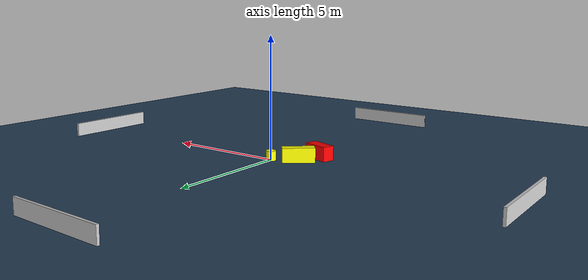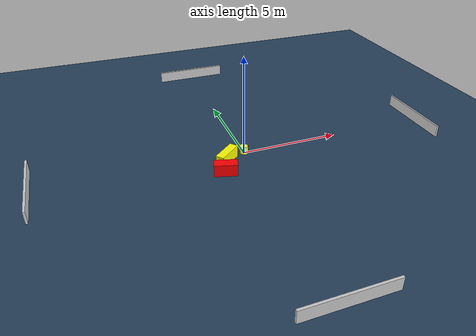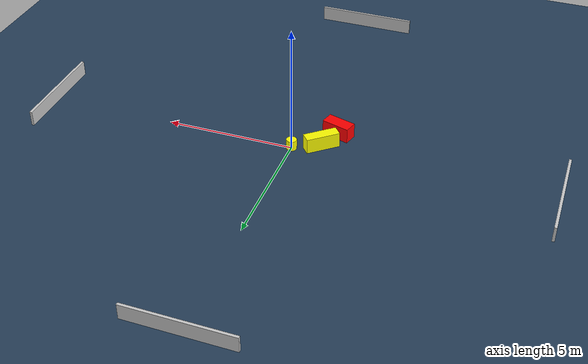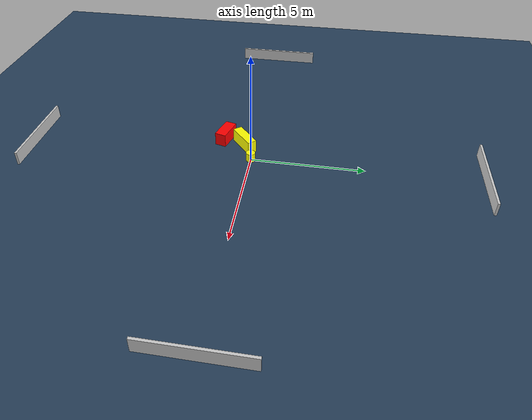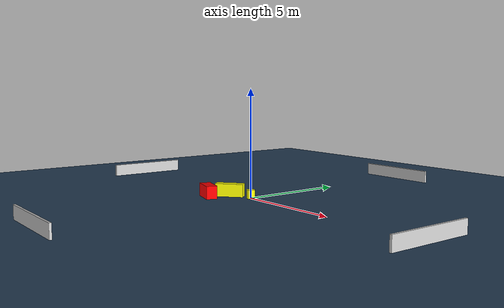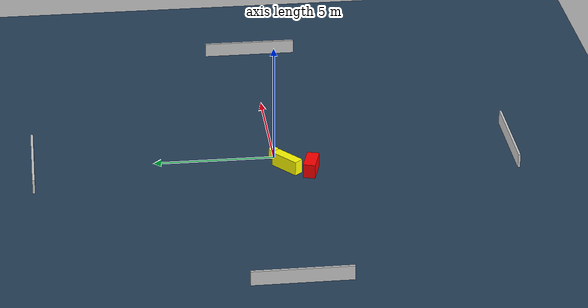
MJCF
<?xml version="1.0" ?>
<mujoco model="generated_environment">
  <option timestep="0.01" integrator="RK4" cone="elliptic"/>
  <default>
    <geom density="1"/>
  </default>
  <asset>
    <texture builtin="gradient" height="3072" name="skybox" rgb1="0.3 0.5 0.7" rgb2="0 0 0" type="skybox" width="512"/>
    <texture builtin="checker" height="300" name="groundplane" rgb1="0.2 0.3 0.4" rgb2="0.1 0.2 0.3" type="2d" width="300"/>
    <material name="groundplane" reflectance="0.2" texrepeat="5 5" texture="groundplane"/>
  </asset>
  <worldbody>
    <light dir="0 0 -1" directional="true" pos="0 0 1.5"/>
    <geom condim="3" friction="0.5 0.005 0.001" material="groundplane" name="floor" pos="0 0 0" size="0 0 0.05" type="plane"/>
    <body name="walls">
      <geom name="wall_1" condim="4" pos="-10.0 0.0 0.3" rgba="0.800000011920929 0.800000011920929 0.800000011920929 1.0" size="0.05 2.0 0.3" type="box"/>
      <geom name="wall_2" condim="4" pos="10.0 0.0 0.3" rgba="0.800000011920929 0.800000011920929 0.800000011920929 1.0" size="0.05 2.0 0.3" type="box"/>
      <geom name="wall_3" condim="4" pos="0.0 -10.0 0.3" rgba="0.800000011920929 0.800000011920929 0.800000011920929 1.0" size="2.0 0.05 0.3" type="box"/>
      <geom name="wall_4" condim="4" pos="0.0 10.0 0.3" rgba="0.800000011920929 0.800000011920929 0.800000011920929 1.0" size="2.0 0.05 0.3" type="box"/>
    </body>
    <body name="robot">
      <joint name="joint_x" type="slide" pos="0 0 0" axis="1 0 0"/>
      <joint name="joint_y" type="slide" pos="0 0 0" axis="0 1 0"/>
      <geom name="robot" type="cylinder" pos="0.0 0.0 0.2" size="0.2 0.2 0.0" mass="5.0" friction="1.0 0.005 0.0001" condim="4" rgba="1.0 1.0 0.0 1.0"/>
    </body>
    <body name="obstacle_1_movable">
      <geom name="obstacle_1_movable" condim="4" pos="-1.027418697922336 -0.44751745281085087 0.3" euler="0 0 40.204525387722526" friction="0.0 0.005 0.001" rgba="1.0 1.0 0.0 1.0" size="0.6598807379986363 0.20998243306032613 0.3" type="box" mass="0.1"/>
      <joint type="free"/>
    </body>
    <body name="obstacle_2_static">
      <geom name="obstacle_2_static" condim="4" pos="-1.4036486367094183 -1.3999454403272737 0.3" euler="0 0 253.98304528335942" friction="0.0 0.005 0.001" rgba="1.0 0.0 0.0 1.0" size="0.25504717131654986 0.553715446044254 0.3" type="box"/>
    </body>
  </worldbody>
  <actuator>
    <motor name="actuator_x" joint="joint_x" gear="1" ctrlrange="-1 1"/>
    <motor name="actuator_y" joint="joint_y" gear="1" ctrlrange="-1 1"/>
  </actuator>
</mujoco>
